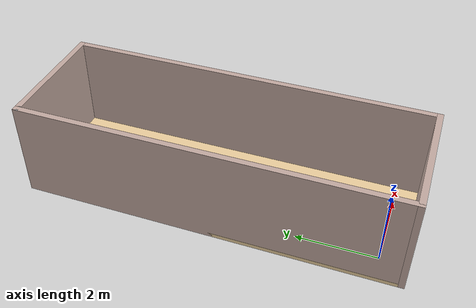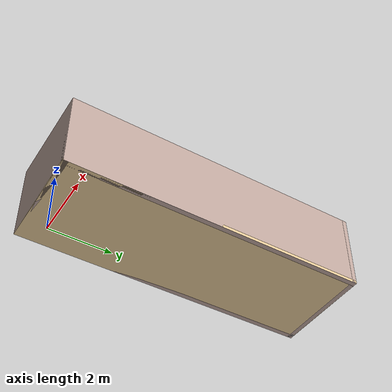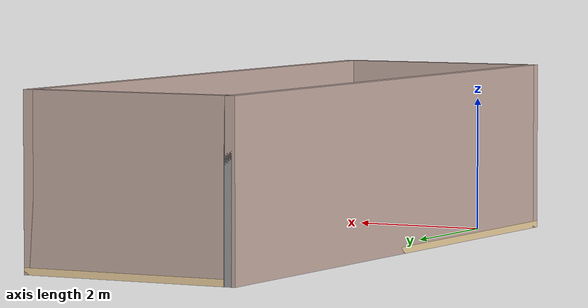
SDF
<?xml version='1.0'?>
<sdf version='1.7'>
  <model name='Supermarket_real_walls'>
    <pose>0.9412 4.06177 0 0 -0 0</pose>
    <link name='Floor_0'>
      <collision name='Floor_0_Collision'>
        <geometry>
          <box>
            <size>3.25 9.5 0.1</size>
          </box>
        </geometry>
        <pose>0 0 0.05 0 -0 0</pose>
      </collision>
      <visual name='Floor_0_Visual'>
        <pose>0 0 0.05 0 -0 0</pose>
        <geometry>
          <box>
            <size>3.25 9.5 0.1</size>
          </box>
        </geometry>
        <material>
          <script>
            <uri>file://media/materials/scripts/gazebo.material</uri>
            <name>Gazebo/Grey</name>
          </script>
          <ambient>0.921569 0.807843 0.615686 1</ambient>
        </material>
        <meta>
          <layer>0</layer>
        </meta>
      </visual>
      <pose>0 0 0 0 -0 0</pose>
    </link>
    <link name='Wall_11'>
      <collision name='Wall_11_Collision'>
        <geometry>
          <box>
            <size>3.25 0.15 2.5</size>
          </box>
        </geometry>
        <pose>0 0 1.25 0 -0 0</pose>
      </collision>
      <visual name='Wall_11_Visual'>
        <pose>0 0 1.25 0 -0 0</pose>
        <geometry>
          <box>
            <size>3.25 0.15 2.5</size>
          </box>
        </geometry>
        <material>
          <script>
            <uri>file://media/materials/scripts/gazebo.material</uri>
            <name>Gazebo/Grey</name>
          </script>
          <ambient>0.760784 0.662745 0.627451 1</ambient>
        </material>
        <meta>
          <layer>0</layer>
        </meta>
      </visual>
      <pose>0 -4.675 0 0 -0 0</pose>
    </link>
    <link name='Wall_12'>
      <collision name='Wall_12_Collision'>
        <geometry>
          <box>
            <size>9.5 0.15 2.5</size>
          </box>
        </geometry>
        <pose>0 0 1.25 0 -0 0</pose>
      </collision>
      <visual name='Wall_12_Visual'>
        <pose>0 0 1.25 0 -0 0</pose>
        <geometry>
          <box>
            <size>9.5 0.15 2.5</size>
          </box>
        </geometry>
        <material>
          <script>
            <uri>file://media/materials/scripts/gazebo.material</uri>
            <name>Gazebo/Grey</name>
          </script>
          <ambient>0.760784 0.662745 0.627451 1</ambient>
        </material>
        <meta>
          <layer>0</layer>
        </meta>
      </visual>
      <pose>1.55 0 0 0 -0 1.5708</pose>
    </link>
    <link name='Wall_18'>
      <collision name='Wall_18_Collision'>
        <geometry>
          <box>
            <size>9.5 0.15 2.5</size>
          </box>
        </geometry>
        <pose>0 0 1.25 0 -0 0</pose>
      </collision>
      <visual name='Wall_18_Visual'>
        <pose>0 0 1.25 0 -0 0</pose>
        <geometry>
          <box>
            <size>9.5 0.15 2.5</size>
          </box>
        </geometry>
        <material>
          <script>
            <uri>file://media/materials/scripts/gazebo.material</uri>
            <name>Gazebo/Grey</name>
          </script>
          <ambient>0.760784 0.662745 0.627451 1</ambient>
        </material>
        <meta>
          <layer>0</layer>
        </meta>
      </visual>
      <pose>-1.55 0 0 0 -0 1.5708</pose>
    </link>
    <link name='Wall_19'>
      <collision name='Wall_19_Collision'>
        <geometry>
          <box>
            <size>0.16 0.15 2.5</size>
          </box>
        </geometry>
        <pose>0 0 1.25 0 -0 0</pose>
      </collision>
      <visual name='Wall_19_Visual'>
        <pose>0 0 1.25 0 -0 0</pose>
        <geometry>
          <box>
            <size>0.16 0.15 2.5</size>
          </box>
        </geometry>
        <material>
          <script>
            <uri>file://media/materials/scripts/gazebo.material</uri>
            <name>Gazebo/Grey</name>
          </script>
          <ambient>1 1 1 1</ambient>
        </material>
        <meta>
          <layer>0</layer>
        </meta>
      </visual>
      <pose>-1.545 4.675 0 0 -0 0</pose>
    </link>
    <link name='Wall_20'>
      <collision name='Wall_20_Collision'>
        <geometry>
          <box>
            <size>0.16 0.15 2.5</size>
          </box>
        </geometry>
        <pose>0 0 1.25 0 -0 0</pose>
      </collision>
      <visual name='Wall_20_Visual'>
        <pose>0 0 1.25 0 -0 0</pose>
        <geometry>
          <box>
            <size>0.16 0.15 2.5</size>
          </box>
        </geometry>
        <material>
          <script>
            <uri>file://media/materials/scripts/gazebo.material</uri>
            <name>Gazebo/Grey</name>
          </script>
          <ambient>1 1 1 1</ambient>
        </material>
        <meta>
          <layer>0</layer>
        </meta>
      </visual>
      <pose>-1.535 4.675 0 0 -0 0</pose>
    </link>
    <link name='Wall_21'>
      <collision name='Wall_21_Collision'>
        <geometry>
          <box>
            <size>3.23 0.15 2.5</size>
          </box>
        </geometry>
        <pose>0 0 1.25 0 -0 0</pose>
      </collision>
      <visual name='Wall_21_Visual'>
        <pose>0 0 1.25 0 -0 0</pose>
        <geometry>
          <box>
            <size>3.23 0.15 2.5</size>
          </box>
        </geometry>
        <material>
          <script>
            <uri>file://media/materials/scripts/gazebo.material</uri>
            <name>Gazebo/Grey</name>
          </script>
          <ambient>0.760784 0.662745 0.627451 1</ambient>
        </material>
        <meta>
          <layer>0</layer>
        </meta>
      </visual>
      <pose>0.01 4.675 0 0 -0 0</pose>
    </link>
    <static>1</static>
  </model>
</sdf>
